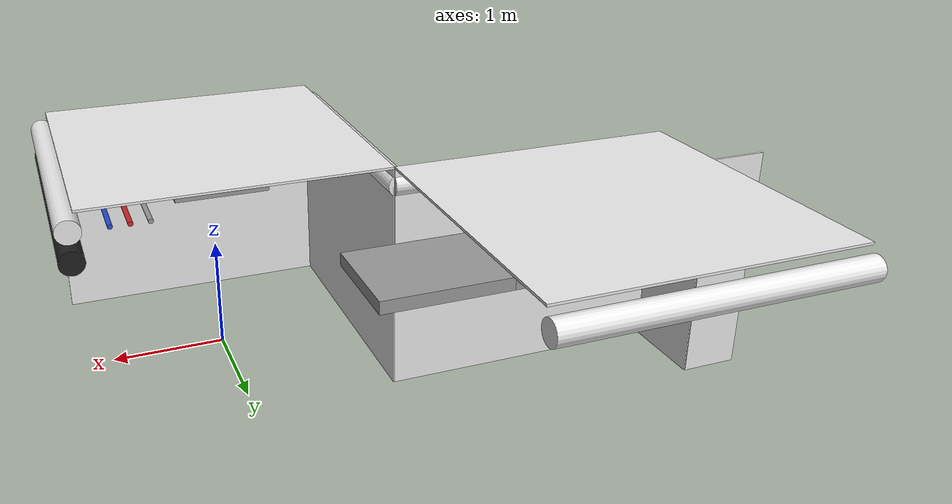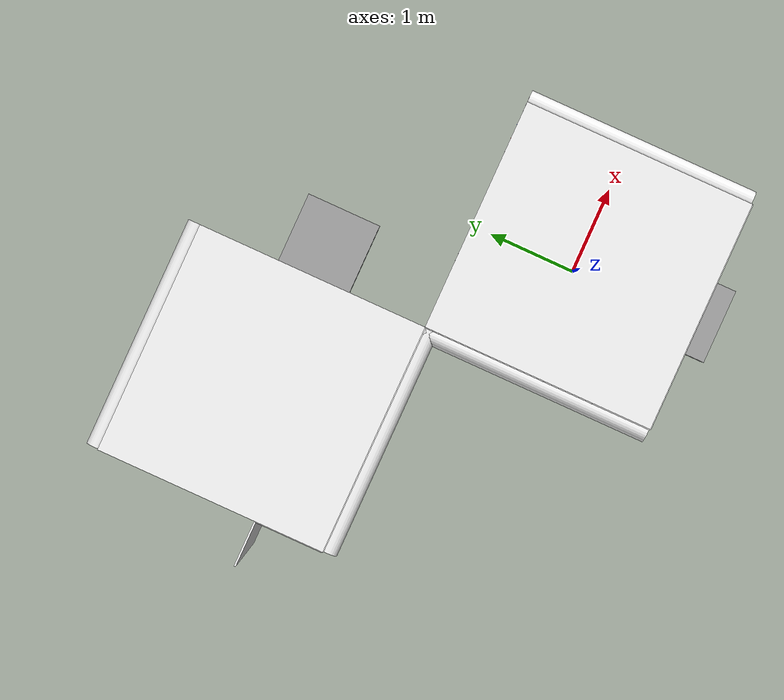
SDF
<sdf version="1.6">
 <world name="default">
  <model name="wall_back_0_0_0_0">
   <static>1</static>
   <pose>0.0 -1.25 1.0 0.0 0.0 0.0</pose>
   <link name="link">
    <collision name="collision"><geometry><box><size>2.5 0.02 2.0</size></box></geometry></collision>
    <visual name="visual">
     <material>
      <script><name>Gazebo/White</name><uri>file://media/materials/scripts/gazebo.material</uri></script>
     </material>
     <geometry><box><size>2.5 0.02 2.0</size></box></geometry>
    </visual>
   </link>
  </model>
  <model name="wall_left_0_0_0_0">
   <static>1</static>
   <pose>-1.25 0.0 1.0 0.0 0.0 1.57</pose>
   <link name="link">
    <collision name="collision"><geometry><box><size>2.5 0.02 2.0</size></box></geometry></collision>
    <visual name="visual">
     <material>
      <script><name>Gazebo/White</name><uri>file://media/materials/scripts/gazebo.material</uri></script>
     </material>
     <geometry><box><size>2.5 0.02 2.0</size></box></geometry>
    </visual>
   </link>
  </model>
  <model name="wall_top_0_0_0_0">
   <static>1</static>
   <pose>0.0 0.0 2.0 1.57 0.0 0.0</pose>
   <link name="link">
    <collision name="collision"><geometry><box><size>2.5 0.02 2.5</size></box></geometry></collision>
    <visual name="visual">
     <material>
      <script><name>Gazebo/White</name><uri>file://media/materials/scripts/gazebo.material</uri></script>
     </material>
     <geometry><box><size>2.5 0.02 2.5</size></box></geometry>
    </visual>
   </link>
  </model>
  <model name="ceiling_1_0_0_0_0">
   <pose>0.0 0.0 1.7 0.0 0.0 0.0</pose>
   <link name="link_1">
    <visual name="visual">
     <geometry><box><size>0.8 1 0.1</size></box></geometry>
     <material>
      <script><uri>file://media/materials/scripts/gazebo.material</uri><name>Gazebo/Grey</name></script>
     </material>
    </visual>
    <collision name="collision"><geometry><box><size>0.8 1 0.1</size></box></geometry></collision>
   </link>
   <static>1</static>
  </model>
  <model name="ceiling_1_0_0_1_0">
   <pose>0.0 -1.0 1.7 0.0 0.0 0.0</pose>
   <link name="link_1">
    <visual name="visual">
     <geometry><box><size>0.8 1 0.1</size></box></geometry>
     <material>
      <script><uri>file://media/materials/scripts/gazebo.material</uri><name>Gazebo/Grey</name></script>
     </material>
    </visual>
    <collision name="collision"><geometry><box><size>0.8 1 0.1</size></box></geometry></collision>
   </link>
   <static>1</static>
  </model>
  <model name="white_pipe_left_0_0_0_0">
   <static>1</static>
   <pose>0.0 0.0 1.84 0.0 0.0 0.0</pose>
   <link name="link_0">
    <visual name="visual">
     <pose>-1.3 0 0 1.57 0 0</pose>
     <geometry><cylinder><radius>0.1</radius><length>2.5</length></cylinder></geometry>
     <material>
      <script><uri>file://media/materials/scripts/gazebo.material</uri><name>Gazebo/White</name></script>
     </material>
    </visual>
    <collision name="collision">
     <pose>-1.3 0 0 1.57 0 0</pose>
     <geometry><cylinder><radius>0.1</radius><length>2.5</length></cylinder></geometry>
    </collision>
   </link>
  </model>
  <model name="white_pipe_right_0_0_0_0">
   <static>1</static>
   <pose>0.0 0.0 1.84 0.0 0.0 0.0</pose>
   <link name="link_0">
    <visual name="visual">
     <pose>1.3 0 0 1.57 0 0</pose>
     <geometry><cylinder><radius>0.1</radius><length>2.5</length></cylinder></geometry>
     <material>
      <script><uri>file://media/materials/scripts/gazebo.material</uri><name>Gazebo/White</name></script>
     </material>
    </visual>
    <collision name="collision">
     <pose>1.3 0 0 1.57 0 0</pose>
     <geometry><cylinder><radius>0.1</radius><length>2.5</length></cylinder></geometry>
    </collision>
   </link>
  </model>
  <model name="black_pipe_right_0_0_0_0">
   <static>1</static>
   <pose>0.0 0.0 1.84 0.0 0.0 0.0</pose>
   <link name="link_0">
    <visual name="visual">
     <pose>1.3 0 -0.25 1.57 0 0</pose>
     <geometry><cylinder><radius>0.1</radius><length>2.5</length></cylinder></geometry>
     <material>
      <script><uri>file://media/materials/scripts/gazebo.material</uri><name>Gazebo/Black</name></script>
     </material>
    </visual>
    <collision name="collision">
     <pose>1.3 0 -0.25 1.57 0 0</pose>
     <geometry><cylinder><radius>0.1</radius><length>2.5</length></cylinder></geometry>
    </collision>
   </link>
  </model>
  <model name="grey_pipe_right_0_0_0_0">
   <static>1</static>
   <pose>0.0 0.0 1.84 0.0 0.0 0.0</pose>
   <link name="link_0">
    <visual name="visual">
     <pose>0.7 0 0 1.57 0 0</pose>
     <geometry><cylinder><radius>0.02</radius><length>2.5</length></cylinder></geometry>
     <material>
      <script><uri>file://media/materials/scripts/gazebo.material</uri><name>Gazebo/Grey</name></script>
     </material>
    </visual>
    <collision name="collision">
     <pose>0.7 0 0 1.57 0 0</pose>
     <geometry><cylinder><radius>0.02</radius><length>2.5</length></cylinder></geometry>
    </collision>
   </link>
  </model>
  <model name="red_pipe_right_0_0_0_0">
   <static>1</static>
   <pose>0.0 0.0 1.84 0.0 0.0 0.0</pose>
   <link name="link_0">
    <visual name="visual">
     <pose>0.85 0 0 1.57 0 0</pose>
     <geometry><cylinder><radius>0.02</radius><length>2.5</length></cylinder></geometry>
     <material>
      <script><uri>file://media/materials/scripts/gazebo.material</uri><name>Gazebo/Red</name></script>
     </material>
    </visual>
    <collision name="collision">
     <pose>0.85 0 0 1.57 0 0</pose>
     <geometry><cylinder><radius>0.02</radius><length>2.5</length></cylinder></geometry>
    </collision>
   </link>
  </model>
  <model name="blue_pipe_right_0_0_0_0">
   <static>1</static>
   <pose>0.0 0.0 1.84 0.0 0.0 0.0</pose>
   <link name="link_0">
    <visual name="visual">
     <pose>1 0 0 1.57 0 0</pose>
     <geometry><cylinder><radius>0.02</radius><length>2.5</length></cylinder></geometry>
     <material>
      <script><uri>file://media/materials/scripts/gazebo.material</uri><name>Gazebo/Blue</name></script>
     </material>
    </visual>
    <collision name="collision">
     <pose>1 0 0 1.57 0 0</pose>
     <geometry><cylinder><radius>0.02</radius><length>2.5</length></cylinder></geometry>
    </collision>
   </link>
  </model>
  <model name="ceiling_1_0_1_1_3">
   <pose>-1.0 2.5 1.7 0.0 0.0 1.57</pose>
   <link name="link_1">
    <visual name="visual">
     <geometry><box><size>0.8 1 0.1</size></box></geometry>
     <material>
      <script><uri>file://media/materials/scripts/gazebo.material</uri><name>Gazebo/Grey</name></script>
     </material>
    </visual>
    <collision name="collision"><geometry><box><size>0.8 1 0.1</size></box></geometry></collision>
   </link>
   <static>1</static>
  </model>
  <model name="wall_left_-1_1_0_2">
   <static>1</static>
   <pose>-2.5 1.25 1.0 0.0 0.0 3.14</pose>
   <link name="link">
    <collision name="collision"><geometry><box><size>2.5 0.02 2.0</size></box></geometry></collision>
    <visual name="visual">
     <material>
      <script><name>Gazebo/White</name><uri>file://media/materials/scripts/gazebo.material</uri></script>
     </material>
     <geometry><box><size>2.5 0.02 2.0</size></box></geometry>
    </visual>
   </link>
  </model>
  <model name="wall_top_-1_1_0_2">
   <static>1</static>
   <pose>-2.5 2.5 2.0 1.57 0.0 1.57</pose>
   <link name="link">
    <collision name="collision"><geometry><box><size>2.5 0.02 2.5</size></box></geometry></collision>
    <visual name="visual">
     <material>
      <script><name>Gazebo/White</name><uri>file://media/materials/scripts/gazebo.material</uri></script>
     </material>
     <geometry><box><size>2.5 0.02 2.5</size></box></geometry>
    </visual>
   </link>
  </model>
  <model name="ceiling_1_-1_1_0_2">
   <pose>-1.5 2.5 1.7 0.0 0.0 1.57</pose>
   <link name="link_1">
    <visual name="visual">
     <geometry><box><size>0.8 1 0.1</size></box></geometry>
     <material>
      <script><uri>file://media/materials/scripts/gazebo.material</uri><name>Gazebo/Grey</name></script>
     </material>
    </visual>
    <collision name="collision"><geometry><box><size>0.8 1 0.1</size></box></geometry></collision>
   </link>
   <static>1</static>
  </model>
  <model name="white_pipe_left_-1_1_0_2">
   <static>1</static>
   <pose>-2.5 2.5 1.84 0.0 0.0 1.57</pose>
   <link name="link_0">
    <visual name="visual">
     <pose>-1.3 0 0 1.57 0 0</pose>
     <geometry><cylinder><radius>0.1</radius><length>2.5</length></cylinder></geometry>
     <material>
      <script><uri>file://media/materials/scripts/gazebo.material</uri><name>Gazebo/White</name></script>
     </material>
    </visual>
    <collision name="collision">
     <pose>-1.3 0 0 1.57 0 0</pose>
     <geometry><cylinder><radius>0.1</radius><length>2.5</length></cylinder></geometry>
    </collision>
   </link>
  </model>
  <model name="white_pipe_right_-1_1_0_2">
   <static>1</static>
   <pose>-2.5 2.5 1.84 0.0 0.0 1.57</pose>
   <link name="link_0">
    <visual name="visual">
     <pose>1.3 0 0 1.57 0 0</pose>
     <geometry><cylinder><radius>0.1</radius><length>2.5</length></cylinder></geometry>
     <material>
      <script><uri>file://media/materials/scripts/gazebo.material</uri><name>Gazebo/White</name></script>
     </material>
    </visual>
    <collision name="collision">
     <pose>1.3 0 0 1.57 0 0</pose>
     <geometry><cylinder><radius>0.1</radius><length>2.5</length></cylinder></geometry>
    </collision>
   </link>
  </model>
  <model name="panel_-1_1_0_2">
   <static>1</static>
   <pose>-2.5 1.25 1.3 0.0 0.0 1.57</pose>
   <link name="link">
    <collision name="collision"><geometry><box><size>0.04 0.7 1</size></box></geometry></collision>
    <visual name="visual">
     <material>
      <script><name>Gazebo/Blue</name><uri>file://media/materials/scripts/gazebo.material</uri></script>
     </material>
     <geometry><box><size>0.04 0.7 1</size></box></geometry>
    </visual>
   </link>
  </model>
  <model name="wall_front_front_right_-1_1_0_2">
   <static>1</static>
   <pose>-3.75 1.625 1.0 0.0 0.0 1.57</pose>
   <link name="link">
    <collision name="collision"><geometry><box><size>0.75 0.02 2.0</size></box></geometry></collision>
    <visual name="visual">
     <material>
      <script><name>Gazebo/White</name><uri>file://media/materials/scripts/gazebo.material</uri></script>
     </material>
     <geometry><box><size>0.75 0.02 2.0</size></box></geometry>
    </visual>
   </link>
  </model>
  <model name="wall_front_inside_left_-1_1_0_2">
   <static>1</static>
   <pose>-4.0 2.0 1.0 0.0 0.0 3.14</pose>
   <link name="link">
    <collision name="collision"><geometry><box><size>0.5 0.02 2</size></box></geometry></collision>
    <visual name="visual">
     <material>
      <script><name>Gazebo/White</name><uri>file://media/materials/scripts/gazebo.material</uri></script>
     </material>
     <geometry><box><size>0.5 0.02 2</size></box></geometry>
    </visual>
   </link>
  </model>
 </world>
</sdf>
